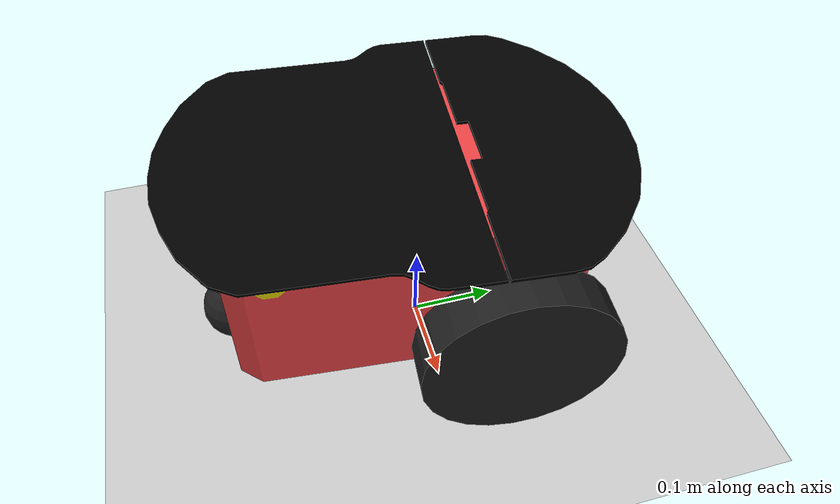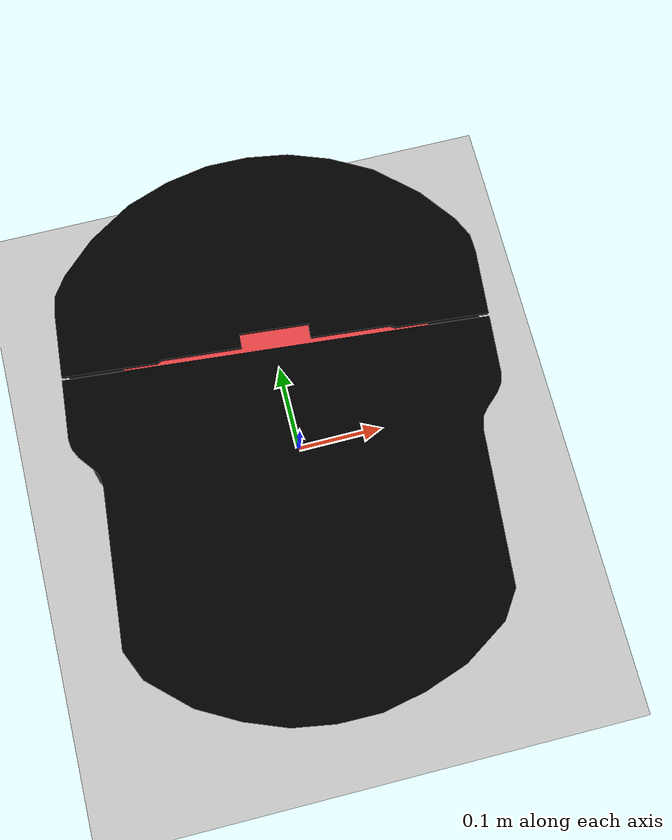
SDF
<sdf version="1.6">
 <world name="default">
  <light name="sun" type="directional">
   <pose>0 0 10 0 -0 0</pose>
   <diffuse>0.8 0.8 0.8 1</diffuse>
   <specular>0.2 0.2 0.2 1</specular>
   <attenuation>
    <range>1000</range>
    <constant>0.9</constant>
    <linear>0.01</linear>
    <quadratic>0.001</quadratic>
   </attenuation>
   <direction>-0.5 0.1 -0.9</direction>
  </light>
  <gravity>0 0 -9.8</gravity>
  <magnetic_field>6e-06 2.3e-05 -4.2e-05</magnetic_field>
  <atmosphere type="adiabatic"/>
  <physics name="default_physics" default="0" type="ode">
   <max_step_size>0.001</max_step_size>
   <real_time_factor>1</real_time_factor>
   <real_time_update_rate>1000</real_time_update_rate>
  </physics>
  <scene><ambient>0.4 0.4 0.4 1</ambient><background>0.7 0.7 0.7 1</background><shadows>1</shadows></scene>
  <spherical_coordinates>
   <surface_model>EARTH_WGS84</surface_model>
   <latitude_deg>0</latitude_deg>
   <longitude_deg>0</longitude_deg>
   <elevation>0</elevation>
   <heading_deg>0</heading_deg>
  </spherical_coordinates>
  <model name="my_robot_kinect">
   <static>0</static>
   <link name="chassis">
    <pose>-0 -0 0.16 0 -0 0</pose>
    <inertial>
     <mass>3.6</mass>
     <inertia><ixx>0</ixx><iyy>0</iyy><izz>0</izz><ixy>0</ixy><ixz>0</ixz><iyz>0</iyz></inertia>
    </inertial>
    <visual name="castor_visual">
     <pose>-0.2 0 -0.12 0 -0 0</pose>
     <geometry><sphere><radius>0.04</radius></sphere></geometry>
     <material>
      <script><uri>file://media/materials/scripts/gazebo.material</uri><name>Gazebo/FlatBlack</name></script>
      <ambient>0.1 0.1 0.1 1</ambient>
      <diffuse>0.1 0.1 0.1 1</diffuse>
      <specular>0.01 0.01 0.01 1</specular>
      <emissive>0 0 0 1</emissive>
     </material>
    </visual>
    <visual name="visual">
     <pose>0 0 0.04 0 -0 0</pose>
     <geometry><mesh><uri>model://pioneer2dx/meshes/chassis.dae</uri></mesh></geometry>
    </visual>
    <collision name="castor_collision">
     <pose>-0.2 0 -0.12 0 -0 0</pose>
     <geometry><sphere><radius>0.04</radius></sphere></geometry>
     <surface>
      <friction>
       <ode><mu>0</mu><mu2>0</mu2><fdir1>0 0 0</fdir1><slip1>1</slip1><slip2>1</slip2></ode>
       <torsional>
        <coefficient>1</coefficient>
        <patch_radius>0</patch_radius>
        <surface_radius>0</surface_radius>
        <use_patch_radius>1</use_patch_radius>
        <ode><slip>0</slip></ode>
       </torsional>
      </friction>
      <bounce><restitution_coefficient>0</restitution_coefficient><threshold>1e+06</threshold></bounce>
      <contact>
       <collide_without_contact>0</collide_without_contact>
       <collide_without_contact_bitmask>1</collide_without_contact_bitmask>
       <collide_bitmask>1</collide_bitmask>
       <ode>
        <soft_cfm>0</soft_cfm>
        <soft_erp>0.2</soft_erp>
        <kp>1e+13</kp>
        <kd>1</kd>
        <max_vel>0.01</max_vel>
        <min_depth>0</min_depth>
       </ode>
       <bullet>
        <split_impulse>1</split_impulse>
        <split_impulse_penetration_threshold>-0.01</split_impulse_penetration_threshold>
        <soft_cfm>0</soft_cfm>
        <soft_erp>0.2</soft_erp>
        <kp>1e+13</kp>
        <kd>1</kd>
       </bullet>
      </contact>
     </surface>
    </collision>
    <collision name="collision">
     <geometry><box><size>0.445 0.277 0.17</size></box></geometry>
     <surface>
      <friction>
       <ode><mu>1</mu><mu2>1</mu2><fdir1>0 0 0</fdir1><slip1>0</slip1><slip2>0</slip2></ode>
       <torsional>
        <coefficient>1</coefficient>
        <patch_radius>0</patch_radius>
        <surface_radius>0</surface_radius>
        <use_patch_radius>1</use_patch_radius>
        <ode><slip>0</slip></ode>
       </torsional>
      </friction>
      <bounce><restitution_coefficient>0</restitution_coefficient><threshold>1e+06</threshold></bounce>
      <contact>
       <collide_without_contact>0</collide_without_contact>
       <collide_without_contact_bitmask>1</collide_without_contact_bitmask>
       <collide_bitmask>1</collide_bitmask>
       <ode>
        <soft_cfm>0</soft_cfm>
        <soft_erp>0.2</soft_erp>
        <kp>1e+13</kp>
        <kd>1</kd>
        <max_vel>0.01</max_vel>
        <min_depth>0</min_depth>
       </ode>
       <bullet>
        <split_impulse>1</split_impulse>
        <split_impulse_penetration_threshold>-0.01</split_impulse_penetration_threshold>
        <soft_cfm>0</soft_cfm>
        <soft_erp>0.2</soft_erp>
        <kp>1e+13</kp>
        <kd>1</kd>
       </bullet>
      </contact>
     </surface>
    </collision>
   </link>
   <link name="left_wheel">
    <pose>0.1 -0.17 0.11 0.000239 1.5707 1.57094</pose>
    <inertial>
     <mass>1.5</mass>
     <inertia><ixx>0.0051</ixx><iyy>0.0051</iyy><izz>0.009</izz><ixy>0</ixy><ixz>0</ixz><iyz>0</iyz></inertia>
    </inertial>
    <visual name="visual">
     <geometry><cylinder><radius>0.11</radius><length>0.05</length></cylinder></geometry>
     <material>
      <script><uri>file://media/materials/scripts/gazebo.material</uri><name>Gazebo/FlatBlack</name></script>
      <ambient>0.1 0.1 0.1 1</ambient>
      <diffuse>0.1 0.1 0.1 1</diffuse>
      <specular>0.01 0.01 0.01 1</specular>
      <emissive>0 0 0 1</emissive>
     </material>
    </visual>
    <collision name="collision">
     <geometry><cylinder><radius>0.11</radius><length>0.05</length></cylinder></geometry>
     <surface>
      <friction>
       <ode><mu>100000</mu><mu2>100000</mu2><fdir1>0 0 0</fdir1><slip1>0</slip1><slip2>0</slip2></ode>
       <torsional>
        <coefficient>1</coefficient>
        <patch_radius>0</patch_radius>
        <surface_radius>0</surface_radius>
        <use_patch_radius>1</use_patch_radius>
        <ode><slip>0</slip></ode>
       </torsional>
      </friction>
      <bounce><restitution_coefficient>0</restitution_coefficient><threshold>1e+06</threshold></bounce>
      <contact>
       <collide_without_contact>0</collide_without_contact>
       <collide_without_contact_bitmask>1</collide_without_contact_bitmask>
       <collide_bitmask>1</collide_bitmask>
       <ode>
        <soft_cfm>0</soft_cfm>
        <soft_erp>0.2</soft_erp>
        <kp>1e+13</kp>
        <kd>1</kd>
        <max_vel>0.01</max_vel>
        <min_depth>0</min_depth>
       </ode>
       <bullet>
        <split_impulse>1</split_impulse>
        <split_impulse_penetration_threshold>-0.01</split_impulse_penetration_threshold>
        <soft_cfm>0</soft_cfm>
        <soft_erp>0.2</soft_erp>
        <kp>1e+13</kp>
        <kd>1</kd>
       </bullet>
      </contact>
     </surface>
    </collision>
   </link>
   <link name="right_wheel">
    <pose>0.1 0.17 0.11 0.000239 1.5707 1.57094</pose>
    <inertial>
     <mass>1.5</mass>
     <inertia><ixx>0.0051</ixx><iyy>0.089</iyy><izz>0.009</izz><ixy>0</ixy><ixz>0</ixz><iyz>0</iyz></inertia>
    </inertial>
    <visual name="visual">
     <geometry><cylinder><radius>0.11</radius><length>0.05</length></cylinder></geometry>
     <material>
      <script><uri>file://media/materials/scripts/gazebo.material</uri><name>Gazebo/FlatBlack</name></script>
      <ambient>0.1 0.1 0.1 1</ambient>
      <diffuse>0.1 0.1 0.1 1</diffuse>
      <specular>0.01 0.01 0.01 1</specular>
      <emissive>0 0 0 1</emissive>
     </material>
    </visual>
    <collision name="collision">
     <geometry><cylinder><radius>0.11</radius><length>0.05</length></cylinder></geometry>
     <surface>
      <friction>
       <ode><mu>100000</mu><mu2>100000</mu2><fdir1>0 0 0</fdir1><slip1>0</slip1><slip2>0</slip2></ode>
       <torsional>
        <coefficient>1</coefficient>
        <patch_radius>0</patch_radius>
        <surface_radius>0</surface_radius>
        <use_patch_radius>1</use_patch_radius>
        <ode><slip>0</slip></ode>
       </torsional>
      </friction>
      <bounce><restitution_coefficient>0</restitution_coefficient><threshold>1e+06</threshold></bounce>
      <contact>
       <collide_without_contact>0</collide_without_contact>
       <collide_without_contact_bitmask>1</collide_without_contact_bitmask>
       <collide_bitmask>1</collide_bitmask>
       <ode>
        <soft_cfm>0</soft_cfm>
        <soft_erp>0.2</soft_erp>
        <kp>1e+13</kp>
        <kd>1</kd>
        <max_vel>0.01</max_vel>
        <min_depth>0</min_depth>
       </ode>
       <bullet>
        <split_impulse>1</split_impulse>
        <split_impulse_penetration_threshold>-0.01</split_impulse_penetration_threshold>
        <soft_cfm>0</soft_cfm>
        <soft_erp>0.2</soft_erp>
        <kp>1e+13</kp>
        <kd>1</kd>
       </bullet>
      </contact>
     </surface>
    </collision>
   </link>
   <joint name="left_wheel_hinge" type="revolute">
    <parent>chassis</parent>
    <child>left_wheel</child>
    <pose>0 0 -0.03 0 -0 0</pose>
    <axis>
     <xyz>0 1 0</xyz>
     <use_parent_model_frame>1</use_parent_model_frame>
     <limit><lower>-1e+16</lower><upper>1e+16</upper><effort>-1</effort><velocity>-1</velocity></limit>
     <dynamics>
      <spring_reference>0</spring_reference>
      <spring_stiffness>0</spring_stiffness>
      <damping>0</damping>
      <friction>0</friction>
     </dynamics>
    </axis>
    <physics>
     <ode><limit><cfm>0</cfm><erp>0.2</erp></limit><suspension><cfm>0</cfm><erp>0.2</erp></suspension></ode>
    </physics>
   </joint>
   <joint name="right_wheel_hinge" type="revolute">
    <parent>chassis</parent>
    <child>right_wheel</child>
    <pose>0 0 0.03 0 -0 0</pose>
    <axis>
     <xyz>0 1 0</xyz>
     <use_parent_model_frame>1</use_parent_model_frame>
     <limit><lower>-1e+16</lower><upper>1e+16</upper><effort>-1</effort><velocity>-1</velocity></limit>
     <dynamics>
      <spring_reference>0</spring_reference>
      <spring_stiffness>0</spring_stiffness>
      <damping>0</damping>
      <friction>0</friction>
     </dynamics>
    </axis>
    <physics>
     <ode><limit><cfm>0</cfm><erp>0.2</erp></limit><suspension><cfm>0</cfm><erp>0.2</erp></suspension></ode>
    </physics>
   </joint>
   <plugin name="differential_drive_controller" filename="libgazebo_ros_diff_drive.so">
    <alwaysOn>1</alwaysOn>
    <updateRate>20</updateRate>
    <leftJoint>left_wheel_hinge</leftJoint>
    <rightJoint>right_wheel_hinge</rightJoint>
    <wheelSeparation>0.39</wheelSeparation>
    <wheelDiameter>0.15</wheelDiameter>
    <wheelTorque>20</wheelTorque>
    <commandTopic>/cmd_vel</commandTopic>
    <odometryTopic>/odom</odometryTopic>
    <odometryFrame>/odom</odometryFrame>
    <publishTf>1</publishTf>
    <publishWheelJointState>1</publishWheelJointState>
    <robotBaseFrame>base_link</robotBaseFrame>
    <robotNamespace>/</robotNamespace>
   </plugin>
   <link name="kinect_link">
    <pose>0.5 0 2 0 0.5 0</pose>
    <inertial>
     <mass>0.1</mass>
     <inertia><ixx>1</ixx><ixy>0</ixy><ixz>0</ixz><iyy>1</iyy><iyz>0</iyz><izz>1</izz></inertia>
    </inertial>
    <sensor name="camera1" type="camera">
     <camera name="head">
      <horizontal_fov>1.39626</horizontal_fov>
      <image><width>800</width><height>800</height><format>R8G8B8</format></image>
      <clip><near>0.02</near><far>300</far></clip>
     </camera>
     <always_on>1</always_on>
     <update_rate>30</update_rate>
     <visualize>1</visualize>
     <plugin name="camera_controller" filename="libgazebo_ros_camera.so">
      <alwaysOn>1</alwaysOn>
      <updateRate>0.0</updateRate>
      <cameraName>iris/camera</cameraName>
      <imageTopicName>image_raw</imageTopicName>
      <cameraInfoTopicName>camera_info</cameraInfoTopicName>
      <frameName>camera_link</frameName>
      <hackBaseline>0.07</hackBaseline>
      <distortionK1>0.0</distortionK1>
      <distortionK2>0.0</distortionK2>
      <distortionK3>0.0</distortionK3>
      <distortionT1>0.0</distortionT1>
      <distortionT2>0.0</distortionT2>
      <robotNamespace>/</robotNamespace>
     </plugin>
    </sensor>
   </link>
   <joint name="kinect_joint" type="fixed">
    <pose>0.15 0 0.2 0 -0 0</pose>
    <child>kinect_link</child>
    <parent>chassis</parent>
    <axis>
     <xyz>0 1 0</xyz>
     <use_parent_model_frame>0</use_parent_model_frame>
     <limit><lower>-1e+16</lower><upper>1e+16</upper></limit>
    </axis>
   </joint>
   <pose>-0.015875 -0.02072 2e-06 -2e-06 -6e-06 1.48593</pose>
  </model>
  <model name="my_ground_plane">
   <static>1</static>
   <link name="link">
    <collision name="collision">
     <geometry><plane><normal>0 0 1</normal><size>100 100</size></plane></geometry>
     <surface><friction><ode><mu>100</mu><mu2>50</mu2></ode></friction></surface>
    </collision>
    <visual name="visual">
     <cast_shadows>0</cast_shadows>
     <geometry><plane><normal>0 0 1</normal><size>100 100</size></plane></geometry>
     <material>
      <script>
       <uri>model://my_ground_plane/materials/scripts</uri>
       <uri>model://my_ground_plane/materials/textures</uri>
       <name>MyGroundPlane/Image</name>
      </script>
     </material>
    </visual>
   </link>
   <pose>10.8895 1.24757 0 0 -0 0</pose>
  </model>
 </world>
</sdf>
